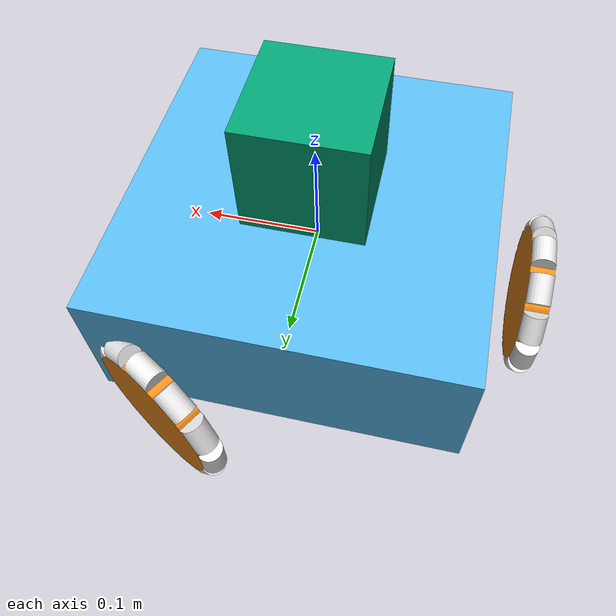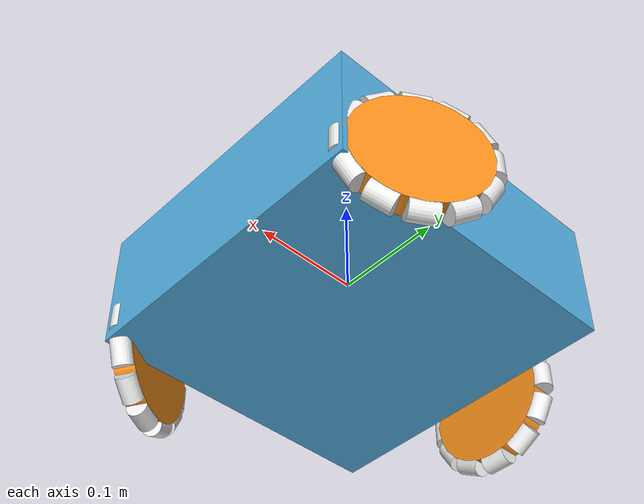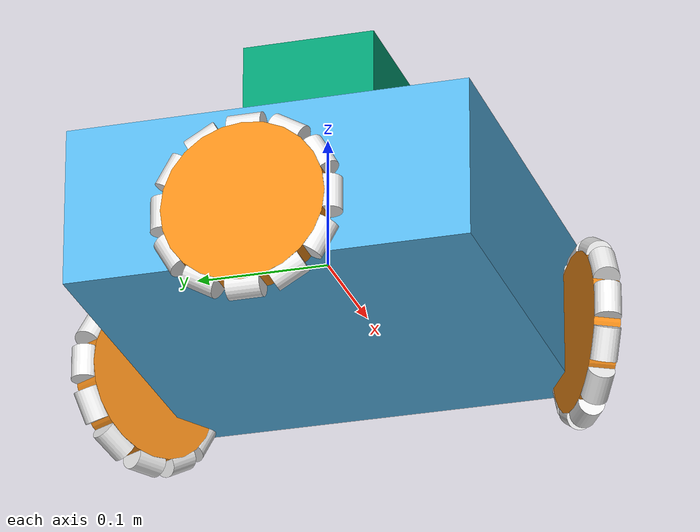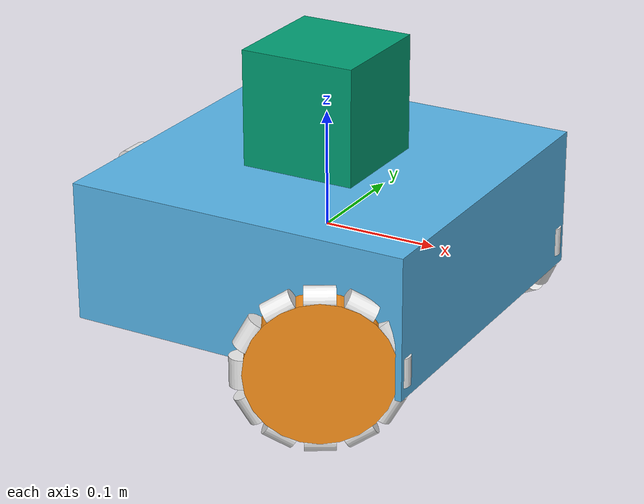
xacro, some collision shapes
<?xml version="1.0"?>
<robot name="omni_robot" xmlns:xacro="http://www.ros.org/wiki/xacro">

    <!-- Define a number of dimensions using properties -->
    <xacro:property name="base_size_x" value="0.30" />
    <xacro:property name="base_size_y" value="0.30" />
    <xacro:property name="base_size_z" value="0.12" />
    <xacro:property name="wheel_length" value="0.02" />
    <xacro:property name="wheel_radius" value="0.06" />
    <xacro:property name="roller_length" value="0.025" />
    <xacro:property name="roller_radius" value="0.01" />
    <xacro:property name="wheel_offset_x" value="0.09" />
    <xacro:property name="wheel_offset_y" value="0.17" />
    <xacro:property name="wheel_offset_z" value="-0.038" />

    <property name="PI" value="3.1415" />
    <xacro:include filename="$(find fira6_description)/urdf/materials.urdf.xacro" />

    <link name="base_footprint"/>

    <joint name="base_joint" type="fixed">
        <origin xyz="0 0 ${base_size_z/2}" rpy="0 0 0" />
        <child link="base_footprint"/>
        <parent link="base_link" />
    </joint>

    <link name="base_link">
        <visual>
            <origin xyz="0 0 0" rpy="0 0 1.57" />
            <geometry>
                <box size="${base_size_x} ${base_size_y} ${base_size_z}" />
		<!--mesh filename="package://fira6_description/meshes/fira6.STL" scale="0.001 0.001 0.001"/-->
            </geometry>
        </visual>
        <collision>
            <origin xyz="0 0 0" rpy="0 0 0" />
            <geometry>
                <box size="${base_size_x} ${base_size_y} ${base_size_z}" />
            </geometry>
        </collision>
    	<inertial>
            <mass value="50" />
      	    <origin xyz="0 0 0" />
      	    <inertia ixx="0.435" ixy="0.0"  ixz="0.0"
        	     iyy="0.435" iyz="0.0"
        	     izz="0.75" />
    	</inertial>
    </link>

  <joint name="hokuyo_joint" type="fixed">
    <axis xyz="0 0 0" />
    <origin xyz="0 0 ${base_size_z/2+0.05}" rpy="0 0 0"/>
    <parent link="base_link"/>
    <child link="hokuyo_link"/>
  </joint>

  <!-- Hokuyo Laser -->
  <link name="hokuyo_link">
    <collision>
      <origin xyz="0 0 0" rpy="0 0 0"/>
      <geometry>
	<box size="0.1 0.1 0.1"/>
      </geometry>
    </collision>

    <visual>
      <origin xyz="0 0 0" rpy="0 0 0"/>
      <geometry>
        <mesh filename="package://rrbot_description/meshes/hokuyo.dae"/>
      </geometry>
    </visual>

    <inertial>
      <mass value="1e-5" />
      <origin xyz="0 0 0" rpy="0 0 0"/>
      <inertia ixx="1e-6" ixy="0" ixz="0" iyy="1e-6" iyz="0" izz="1e-6" />
    </inertial>
  </link>

  <!-- hokuyo -->
  <gazebo reference="hokuyo_link">
    <sensor type="ray" name="head_hokuyo_sensor">
      <pose>0 0 0 0 0 0</pose>
      <visualize>false</visualize>
      <update_rate>40</update_rate>
      <ray>
        <scan>
          <horizontal>
            <samples>720</samples>
            <resolution>1</resolution>
            <min_angle>-1.570796</min_angle>
            <max_angle>1.570796</max_angle>
          </horizontal>
        </scan>
        <range>
          <min>0.10</min>
          <max>30.0</max>
          <resolution>0.01</resolution>
        </range>
        <noise>
          <type>gaussian</type>
          <mean>0.0</mean>
          <stddev>0.01</stddev>
        </noise>
      </ray>
      <plugin name="gazebo_ros_head_hokuyo_controller" filename="libgazebo_ros_laser.so">
        <topicName>/scan</topicName>
        <frameName>hokuyo_link</frameName>
      </plugin>
    </sensor>
  </gazebo>

    <macro name="omni_wheel" params="suffix parent reflect">
        <joint name="${parent}_${suffix}_wheel_joint" type="continuous">
            <axis xyz="0 0 1" />
            <limit effort="100" velocity="100"/>
            <safety_controller k_velocity="10" />
            <origin xyz="${wheel_offset_x} ${reflect*wheel_offset_y} ${wheel_offset_z}" rpy="${reflect*PI/2} 0 ${-0.5233*reflect}" />
            <parent link="${parent}_link"/>
            <child link="omni_${suffix}_wheel_link"/>
        </joint>
        <link name="omni_${suffix}_wheel_link">
            <visual>
                <origin xyz="0 0 0" rpy="0 0 0" />
                <geometry>
                    <cylinder radius="${wheel_radius}" length="${wheel_length}"/>
                </geometry>
                <material name="Orange" />
            </visual>
            <collision>
                <origin xyz="0 0 0" rpy="0 0 0" />
                <geometry>
                    <cylinder radius="${wheel_radius}" length="${wheel_length}"/>
                </geometry>
                <material name="Orange" />
            </collision>
    	    <inertial>
                <mass value="5" />
          	    <origin xyz="0 0 0" />
          	    <inertia ixx="0.0047" ixy="0.0"  ixz="0.0"
            		                iyy="0.0047" iyz="0.0"
	        				     izz="0.0015" />
    	    </inertial>
        </link>

        <joint name = "${suffix}_wheel_roller_joint1" type="continuous">
            <axis xyz="0 1 0" />
            <limit effort="100" velocity="100"/>
            <origin xyz="${wheel_radius} 0 0" rpy="0 0 0" />
            <parent link="omni_${suffix}_wheel_link"/>
            <child link="${suffix}_roller_link1"/>
        </joint>

        <link name="${suffix}_roller_link1">
            <visual>
                <origin xyz="0 0 0" rpy="1.57 0 0" />
                <geometry>
                    <cylinder radius="${roller_radius}" length="${roller_length}"/>
                </geometry>
                <material name="OffWhite" />
            </visual>
            <collision>
                <origin xyz="0 0 0" rpy="1.57 0 0" />
                <geometry>
                    <cylinder radius="${roller_radius}" length="${roller_length}"/>
                </geometry>
                <material name="OffWhite" />
            </collision>
    	    <inertial>
                <mass value="0.1" />
          	    <origin xyz="0 0 0" />
          	    <inertia ixx="0.00001" ixy="0.0"  ixz="0.0"
            				iyy="0.00001" iyz="0.0"
					              izz="0.000005" />
    	    </inertial>
        </link>

        <joint name = "${suffix}_wheel_roller_joint2" type="continuous">
            <axis xyz="0 1 0" />
            <limit effort="100" velocity="100"/>
            <origin xyz="${wheel_radius*0.866} ${wheel_radius*0.5} 0" rpy="0 0 0.5233" />
            <parent link="omni_${suffix}_wheel_link"/>
            <child link="${suffix}_roller_link2"/>
        </joint>

        <link name="${suffix}_roller_link2">
            <visual>
                <origin xyz="0 0 0" rpy="1.57 0 0" />
                <geometry>
                    <cylinder radius="${roller_radius}" length="${roller_length}"/>
                </geometry>
                <material name="OffWhite" />
            </visual>
            <collision>
                <origin xyz="0 0 0" rpy="1.57 0 0" />
                <geometry>
                    <cylinder radius="${roller_radius}" length="${roller_length}"/>
                </geometry>
                <material name="OffWhite" />
            </collision>
    	    <inertial>
                <mass value="0.1" />
          	    <origin xyz="0 0 0" />
          	    <inertia ixx="0.00001" ixy="0.0"  ixz="0.0"
            				iyy="0.00001" iyz="0.0"
					              izz="0.000005" />
    	    </inertial>
        </link>
        <joint name = "${suffix}_wheel_roller_joint3" type="continuous">
            <axis xyz="0 1 0" />
            <limit effort="100" velocity="100"/>
            <origin xyz="${wheel_radius*0.5} ${wheel_radius*0.866} 0" rpy="0 0 1.0467" />
            <parent link="omni_${suffix}_wheel_link"/>
            <child link="${suffix}_roller_link3"/>
        </joint>

        <link name="${suffix}_roller_link3">
            <visual>
                <origin xyz="0 0 0" rpy="1.57 0 0" />
                <geometry>
                    <cylinder radius="${roller_radius}" length="${roller_length}"/>
                </geometry>
                <material name="OffWhite" />
            </visual>
            <collision>
                <origin xyz="0 0 0" rpy="1.57 0 0" />
                <geometry>
                    <cylinder radius="${roller_radius}" length="${roller_length}"/>
                </geometry>
                <material name="OffWhite" />
            </collision>
    	    <inertial>
                <mass value="0.1" />
          	    <origin xyz="0 0 0" />
          	    <inertia ixx="0.00001" ixy="0.0"  ixz="0.0"
            				iyy="0.00001" iyz="0.0"
					              izz="0.000005" />
    	    </inertial>
        </link>
        <joint name = "${suffix}_wheel_roller_joint4" type="continuous">
            <axis xyz="0 1 0" />
            <limit effort="100" velocity="100"/>
            <origin xyz="0 ${wheel_radius*1} 0" rpy="0 0 1.57" />
            <parent link="omni_${suffix}_wheel_link"/>
            <child link="${suffix}_roller_link4"/>
        </joint>

        <link name="${suffix}_roller_link4">
            <visual>
                <origin xyz="0 0 0" rpy="1.57 0 0" />
                <geometry>
                    <cylinder radius="${roller_radius}" length="${roller_length}"/>
                </geometry>
                <material name="OffWhite" />
            </visual>
            <collision>
                <origin xyz="0 0 0" rpy="1.57 0 0" />
                <geometry>
                    <cylinder radius="${roller_radius}" length="${roller_length}"/>
                </geometry>
                <material name="OffWhite" />
            </collision>
    	    <inertial>
                <mass value="0.1" />
          	    <origin xyz="0 0 0" />
          	    <inertia ixx="0.00001" ixy="0.0"  ixz="0.0"
            				iyy="0.00001" iyz="0.0"
					              izz="0.000005" />
    	    </inertial>
        </link>
        <joint name = "${suffix}_wheel_roller_joint5" type="continuous">
            <axis xyz="0 1 0" />
            <limit effort="100" velocity="100"/>
            <origin xyz="${wheel_radius*-0.5} ${wheel_radius*0.866} 0" rpy="0 0 2.093" />
            <parent link="omni_${suffix}_wheel_link"/>
            <child link="${suffix}_roller_link5"/>
        </joint>

        <link name="${suffix}_roller_link5">
            <visual>
                <origin xyz="0 0 0" rpy="1.57 0 0" />
                <geometry>
                    <cylinder radius="${roller_radius}" length="${roller_length}"/>
                </geometry>
                <material name="OffWhite" />
            </visual>
            <collision>
                <origin xyz="0 0 0" rpy="1.57 0 0" />
                <geometry>
                    <cylinder radius="${roller_radius}" length="${roller_length}"/>
                </geometry>
                <material name="OffWhite" />
            </collision>
    	    <inertial>
                <mass value="0.1" />
          	    <origin xyz="0 0 0" />
          	    <inertia ixx="0.00001" ixy="0.0"  ixz="0.0"
            				iyy="0.00001" iyz="0.0"
					              izz="0.000005" />
    	    </inertial>
        </link>
        <joint name = "${suffix}_wheel_roller_joint6" type="continuous">
            <axis xyz="0 1 0" />
            <limit effort="100" velocity="100"/>
            <origin xyz="${wheel_radius*-0.866} ${wheel_radius*0.5} 0" rpy="0 0 2.617" />
            <parent link="omni_${suffix}_wheel_link"/>
            <child link="${suffix}_roller_link6"/>
        </joint>

        <link name="${suffix}_roller_link6">
            <visual>
                <origin xyz="0 0 0" rpy="1.57 0 0" />
                <geometry>
                    <cylinder radius="${roller_radius}" length="${roller_length}"/>
                </geometry>
                <material name="OffWhite" />
            </visual>
            <collision>
                <origin xyz="0 0 0" rpy="1.57 0 0" />
                <geometry>
                    <cylinder radius="${roller_radius}" length="${roller_length}"/>
                </geometry>
                <material name="OffWhite" />
            </collision>
    	    <inertial>
                <mass value="0.1" />
          	    <origin xyz="0 0 0" />
          	    <inertia ixx="0.00001" ixy="0.0"  ixz="0.0"
            				iyy="0.00001" iyz="0.0"
					              izz="0.000005" />
    	    </inertial>
        </link>
        <joint name = "${suffix}_wheel_roller_joint7" type="continuous">
            <axis xyz="0 1 0" />
            <limit effort="100" velocity="100"/>
            <origin xyz="${wheel_radius*-1} ${wheel_radius*0} 0" rpy="0 0 3.14" />
            <parent link="omni_${suffix}_wheel_link"/>
            <child link="${suffix}_roller_link7"/>
        </joint>

        <link name="${suffix}_roller_link7">
            <visual>
                <origin xyz="0 0 0" rpy="1.57 0 0" />
                <geometry>
                    <cylinder radius="${roller_radius}" length="${roller_length}"/>
                </geometry>
                <material name="OffWhite" />
            </visual>
            <collision>
                <origin xyz="0 0 0" rpy="1.57 0 0" />
                <geometry>
                    <cylinder radius="${roller_radius}" length="${roller_length}"/>
                </geometry>
                <material name="OffWhite" />
            </collision>
    	    <inertial>
                <mass value="0.1" />
          	    <origin xyz="0 0 0" />
          	    <inertia ixx="0.00001" ixy="0.0"  ixz="0.0"
            				iyy="0.00001" iyz="0.0"
					              izz="0.000005" />
    	    </inertial>
        </link>
        <joint name = "${suffix}_wheel_roller_joint8" type="continuous">
            <axis xyz="0 1 0" />
            <limit effort="100" velocity="100"/>
            <origin xyz="${wheel_radius*-0.866} ${wheel_radius*-0.5} 0" rpy="0 0 3.66" />
            <parent link="omni_${suffix}_wheel_link"/>
            <child link="${suffix}_roller_link8"/>
        </joint>

        <link name="${suffix}_roller_link8">
            <visual>
                <origin xyz="0 0 0" rpy="1.57 0 0" />
                <geometry>
                    <cylinder radius="${roller_radius}" length="${roller_length}"/>
                </geometry>
                <material name="OffWhite" />
            </visual>
            <collision>
                <origin xyz="0 0 0" rpy="1.57 0 0" />
                <geometry>
                    <cylinder radius="${roller_radius}" length="${roller_length}"/>
                </geometry>
                <material name="OffWhite" />
            </collision>
    	    <inertial>
                <mass value="0.1" />
          	    <origin xyz="0 0 0" />
          	    <inertia ixx="0.00001" ixy="0.0"  ixz="0.0"
            				iyy="0.00001" iyz="0.0"
					              izz="0.000005" />
    	    </inertial>
        </link>
	<joint name = "${suffix}_wheel_roller_joint9" type="continuous">
            <axis xyz="0 1 0" />
            <limit effort="100" velocity="100"/>
            <origin xyz="${wheel_radius*-0.5} ${wheel_radius*-0.866} 0" rpy="0 0 4.187" />
            <parent link="omni_${suffix}_wheel_link"/>
            <child link="${suffix}_roller_link9"/>
        </joint>

        <link name="${suffix}_roller_link9">
            <visual>
                <origin xyz="0 0 0" rpy="1.57 0 0" />
                <geometry>
                    <cylinder radius="${roller_radius}" length="${roller_length}"/>
                </geometry>
                <material name="OffWhite" />
            </visual>
            <collision>
                <origin xyz="0 0 0" rpy="1.57 0 0" />
                <geometry>
                    <cylinder radius="${roller_radius}" length="${roller_length}"/>
                </geometry>
                <material name="OffWhite" />
            </collision>
    	    <inertial>
                <mass value="0.1" />
          	    <origin xyz="0 0 0" />
          	    <inertia ixx="0.00001" ixy="0.0"  ixz="0.0"
            				iyy="0.00001" iyz="0.0"
					              izz="0.000005" />
    	    </inertial>
        </link>
	<joint name = "${suffix}_wheel_roller_joint10" type="continuous">
            <axis xyz="0 1 0" />
            <limit effort="100" velocity="100"/>
            <origin xyz="${wheel_radius*0} ${wheel_radius*-1} 0" rpy="0 0 4.71" />
            <parent link="omni_${suffix}_wheel_link"/>
            <child link="${suffix}_roller_link10"/>
        </joint>

        <link name="${suffix}_roller_link10">
            <visual>
                <origin xyz="0 0 0" rpy="1.57 0 0" />
                <geometry>
                    <cylinder radius="${roller_radius}" length="${roller_length}"/>
                </geometry>
                <material name="OffWhite" />
            </visual>
            <collision>
                <origin xyz="0 0 0" rpy="1.57 0 0" />
                <geometry>
                    <cylinder radius="${roller_radius}" length="${roller_length}"/>
                </geometry>
                <material name="OffWhite" />
            </collision>
    	    <inertial>
                <mass value="0.1" />
          	    <origin xyz="0 0 0" />
          	    <inertia ixx="0.00001" ixy="0.0"  ixz="0.0"
            				iyy="0.00001" iyz="0.0"
					              izz="0.000005" />
    	    </inertial>
        </link>
	<joint name = "${suffix}_wheel_roller_joint11" type="continuous">
            <axis xyz="0 1 0" />
            <limit effort="100" velocity="100"/>
            <origin xyz="${wheel_radius*0.5} ${wheel_radius*-0.866} 0" rpy="0 0 5.233" />
            <parent link="omni_${suffix}_wheel_link"/>
            <child link="${suffix}_roller_link11"/>
        </joint>

        <link name="${suffix}_roller_link11">
            <visual>
                <origin xyz="0 0 0" rpy="1.57 0 0" />
                <geometry>
                    <cylinder radius="${roller_radius}" length="${roller_length}"/>
                </geometry>
                <material name="OffWhite" />
            </visual>
            <collision>
                <origin xyz="0 0 0" rpy="1.57 0 0" />
                <geometry>
                    <cylinder radius="${roller_radius}" length="${roller_length}"/>
                </geometry>
                <material name="OffWhite" />
            </collision>
    	    <inertial>
                <mass value="0.1" />
          	    <origin xyz="0 0 0" />
          	    <inertia ixx="0.00001" ixy="0.0"  ixz="0.0"
            				iyy="0.00001" iyz="0.0"
					              izz="0.000005" />
    	    </inertial>
        </link>
	<joint name = "${suffix}_wheel_roller_joint12" type="continuous">
            <axis xyz="0 1 0" />
            <limit effort="100" velocity="100"/>
            <origin xyz="${wheel_radius*0.866} ${wheel_radius*-0.5} 0" rpy="0 0 5.757" />
            <parent link="omni_${suffix}_wheel_link"/>
            <child link="${suffix}_roller_link12"/>
        </joint>

        <link name="${suffix}_roller_link12">
            <visual>
                <origin xyz="0 0 0" rpy="1.57 0 0" />
                <geometry>
                    <cylinder radius="${roller_radius}" length="${roller_length}"/>
                </geometry>
                <material name="OffWhite" />
            </visual>
            <collision>
                <origin xyz="0 0 0" rpy="1.57 0 0" />
                <geometry>
                    <cylinder radius="${roller_radius}" length="${roller_length}"/>
                </geometry>
                <material name="OffWhite" />
            </collision>
    	    <inertial>
                <mass value="0.1" />
          	    <origin xyz="0 0 0" />
          	    <inertia ixx="0.00001" ixy="0.0"  ixz="0.0"
            				iyy="0.00001" iyz="0.0"
					              izz="0.000005" />
    	    </inertial>
        </link>
        <gazebo reference="$omni_${suffix}_wheel_link">
		<mu1 value="1.0"/>
		<mu2 value="1.0"/>
		<kp value="10000000.0" />
		<kd value="1.0" />
		<fdir1 value="1 0 0"/>
	</gazebo>
    </macro>

    <macro name="omni_wheel_back" params="suffix parent reflect">
        <joint name="${parent}_${suffix}_wheel_joint" type="continuous">
            <axis xyz="0 0 1" />
            <limit effort="100" velocity="100"/>
            <safety_controller k_velocity="10" />
            <origin xyz="-0.1924 0 ${wheel_offset_z}" rpy="${reflect*PI/2} 0 1.57" />
            <parent link="${parent}_link"/>
            <child link="omni_${suffix}_wheel_link"/>
        </joint>
        <link name="omni_${suffix}_wheel_link">
            <visual>
                <origin xyz="0 0 0" rpy="0 0 0" />
                <geometry>
                    <cylinder radius="${wheel_radius}" length="${wheel_length}"/>
                </geometry>
                <material name="Orange" />
            </visual>
            <collision>
                <origin xyz="0 0 0" rpy="0 0 0" />
                <geometry>
                    <cylinder radius="${wheel_radius}" length="${wheel_length}"/>
                </geometry>
                <material name="Orange" />
            </collision>
    	    <inertial>
                <mass value="5" />
          	    <origin xyz="0 0 0" />
          	    <inertia ixx="0.0047" ixy="0.0"  ixz="0.0"
            		                iyy="0.0047" iyz="0.0"
	        				     izz="0.0015" />
    	    </inertial>
        </link>

        <joint name = "${suffix}_wheel_roller_joint1" type="continuous">
            <axis xyz="0 1 0" />
            <limit effort="100" velocity="100"/>
            <origin xyz="${wheel_radius} 0 0" rpy="0 0 0" />
            <parent link="omni_${suffix}_wheel_link"/>
            <child link="${suffix}_roller_link1"/>
        </joint>

        <link name="${suffix}_roller_link1">
            <visual>
                <origin xyz="0 0 0" rpy="1.57 0 0" />
                <geometry>
                    <cylinder radius="${roller_radius}" length="${roller_length}"/>
                </geometry>
                <material name="OffWhite" />
            </visual>
            <collision>
                <origin xyz="0 0 0" rpy="1.57 0 0" />
                <geometry>
                    <cylinder radius="${roller_radius}" length="${roller_length}"/>
                </geometry>
                <material name="OffWhite" />
            </collision>
    	    <inertial>
                <mass value="0.1" />
          	    <origin xyz="0 0 0" />
          	    <inertia ixx="0.00001" ixy="0.0"  ixz="0.0"
            				iyy="0.00001" iyz="0.0"
					              izz="0.000005" />
    	    </inertial>
        </link>

        <joint name = "${suffix}_wheel_roller_joint2" type="continuous">
            <axis xyz="0 1 0" />
            <limit effort="100" velocity="100"/>
            <origin xyz="${wheel_radius*0.866} ${wheel_radius*0.5} 0" rpy="0 0 0.5233" />
            <parent link="omni_${suffix}_wheel_link"/>
            <child link="${suffix}_roller_link2"/>
        </joint>

        <link name="${suffix}_roller_link2">
            <visual>
                <origin xyz="0 0 0" rpy="1.57 0 0" />
                <geometry>
                    <cylinder radius="${roller_radius}" length="${roller_length}"/>
                </geometry>
                <material name="OffWhite" />
            </visual>
            <collision>
                <origin xyz="0 0 0" rpy="1.57 0 0" />
                <geometry>
                    <cylinder radius="${roller_radius}" length="${roller_length}"/>
                </geometry>
                <material name="OffWhite" />
            </collision>
    	    <inertial>
                <mass value="0.1" />
          	    <origin xyz="0 0 0" />
          	    <inertia ixx="0.00001" ixy="0.0"  ixz="0.0"
            				iyy="0.00001" iyz="0.0"
					              izz="0.000005" />
    	    </inertial>
        </link>
        <joint name = "${suffix}_wheel_roller_joint3" type="continuous">
            <axis xyz="0 1 0" />
            <limit effort="100" velocity="100"/>
            <origin xyz="${wheel_radius*0.5} ${wheel_radius*0.866} 0" rpy="0 0 1.0467" />
            <parent link="omni_${suffix}_wheel_link"/>
            <child link="${suffix}_roller_link3"/>
        </joint>

        <link name="${suffix}_roller_link3">
            <visual>
                <origin xyz="0 0 0" rpy="1.57 0 0" />
                <geometry>
                    <cylinder radius="${roller_radius}" length="${roller_length}"/>
                </geometry>
                <material name="OffWhite" />
            </visual>
            <collision>
                <origin xyz="0 0 0" rpy="1.57 0 0" />
                <geometry>
                    <cylinder radius="${roller_radius}" length="${roller_length}"/>
                </geometry>
                <material name="OffWhite" />
            </collision>
    	    <inertial>
                <mass value="0.1" />
          	    <origin xyz="0 0 0" />
          	    <inertia ixx="0.00001" ixy="0.0"  ixz="0.0"
            				iyy="0.00001" iyz="0.0"
					              izz="0.000005" />
    	    </inertial>
        </link>
        <joint name = "${suffix}_wheel_roller_joint4" type="continuous">
            <axis xyz="0 1 0" />
            <limit effort="100" velocity="100"/>
            <origin xyz="0 ${wheel_radius*1} 0" rpy="0 0 1.57" />
            <parent link="omni_${suffix}_wheel_link"/>
            <child link="${suffix}_roller_link4"/>
        </joint>

        <link name="${suffix}_roller_link4">
            <visual>
                <origin xyz="0 0 0" rpy="1.57 0 0" />
                <geometry>
                    <cylinder radius="${roller_radius}" length="${roller_length}"/>
                </geometry>
                <material name="OffWhite" />
            </visual>
            <collision>
                <origin xyz="0 0 0" rpy="1.57 0 0" />
                <geometry>
                    <cylinder radius="${roller_radius}" length="${roller_length}"/>
                </geometry>
                <material name="OffWhite" />
            </collision>
    	    <inertial>
                <mass value="0.1" />
          	    <origin xyz="0 0 0" />
          	    <inertia ixx="0.00001" ixy="0.0"  ixz="0.0"
            				iyy="0.00001" iyz="0.0"
					              izz="0.000005" />
    	    </inertial>
        </link>
        <joint name = "${suffix}_wheel_roller_joint5" type="continuous">
            <axis xyz="0 1 0" />
            <limit effort="100" velocity="100"/>
            <origin xyz="${wheel_radius*-0.5} ${wheel_radius*0.866} 0" rpy="0 0 2.093" />
            <parent link="omni_${suffix}_wheel_link"/>
            <child link="${suffix}_roller_link5"/>
        </joint>

        <link name="${suffix}_roller_link5">
            <visual>
                <origin xyz="0 0 0" rpy="1.57 0 0" />
                <geometry>
                    <cylinder radius="${roller_radius}" length="${roller_length}"/>
                </geometry>
                <material name="OffWhite" />
            </visual>
            <collision>
                <origin xyz="0 0 0" rpy="1.57 0 0" />
                <geometry>
                    <cylinder radius="${roller_radius}" length="${roller_length}"/>
                </geometry>
                <material name="OffWhite" />
            </collision>
    	    <inertial>
                <mass value="0.1" />
          	    <origin xyz="0 0 0" />
          	    <inertia ixx="0.00001" ixy="0.0"  ixz="0.0"
            				iyy="0.00001" iyz="0.0"
					              izz="0.000005" />
    	    </inertial>
        </link>
        <joint name = "${suffix}_wheel_roller_joint6" type="continuous">
            <axis xyz="0 1 0" />
            <limit effort="100" velocity="100"/>
            <origin xyz="${wheel_radius*-0.866} ${wheel_radius*0.5} 0" rpy="0 0 2.617" />
            <parent link="omni_${suffix}_wheel_link"/>
            <child link="${suffix}_roller_link6"/>
        </joint>

        <link name="${suffix}_roller_link6">
            <visual>
                <origin xyz="0 0 0" rpy="1.57 0 0" />
                <geometry>
                    <cylinder radius="${roller_radius}" length="${roller_length}"/>
                </geometry>
                <material name="OffWhite" />
            </visual>
            <collision>
                <origin xyz="0 0 0" rpy="1.57 0 0" />
                <geometry>
                    <cylinder radius="${roller_radius}" length="${roller_length}"/>
                </geometry>
                <material name="OffWhite" />
            </collision>
    	    <inertial>
                <mass value="0.1" />
          	    <origin xyz="0 0 0" />
          	    <inertia ixx="0.00001" ixy="0.0"  ixz="0.0"
            				iyy="0.00001" iyz="0.0"
					              izz="0.000005" />
    	    </inertial>
        </link>

        <joint name = "${suffix}_wheel_roller_joint7" type="continuous">
            <axis xyz="0 1 0" />
            <limit effort="100" velocity="100"/>
            <origin xyz="${wheel_radius*-1} ${wheel_radius*0} 0" rpy="0 0 3.14" />
            <parent link="omni_${suffix}_wheel_link"/>
            <child link="${suffix}_roller_link7"/>
        </joint>

        <link name="${suffix}_roller_link7">
            <visual>
                <origin xyz="0 0 0" rpy="1.57 0 0" />
                <geometry>
                    <cylinder radius="${roller_radius}" length="${roller_length}"/>
                </geometry>
                <material name="OffWhite" />
            </visual>
            <collision>
                <origin xyz="0 0 0" rpy="1.57 0 0" />
                <geometry>
                    <cylinder radius="${roller_radius}" length="${roller_length}"/>
                </geometry>
                <material name="OffWhite" />
            </collision>
    	    <inertial>
                <mass value="0.1" />
          	    <origin xyz="0 0 0" />
          	    <inertia ixx="0.00001" ixy="0.0"  ixz="0.0"
            				iyy="0.00001" iyz="0.0"
					              izz="0.000005" />
    	    </inertial>
        </link>
        <joint name = "${suffix}_wheel_roller_joint8" type="continuous">
            <axis xyz="0 1 0" />
            <limit effort="100" velocity="100"/>
            <origin xyz="${wheel_radius*-0.866} ${wheel_radius*-0.5} 0" rpy="0 0 3.66" />
            <parent link="omni_${suffix}_wheel_link"/>
            <child link="${suffix}_roller_link8"/>
        </joint>

        <link name="${suffix}_roller_link8">
            <visual>
                <origin xyz="0 0 0" rpy="1.57 0 0" />
                <geometry>
                    <cylinder radius="${roller_radius}" length="${roller_length}"/>
                </geometry>
                <material name="OffWhite" />
            </visual>
            <collision>
                <origin xyz="0 0 0" rpy="1.57 0 0" />
                <geometry>
                    <cylinder radius="${roller_radius}" length="${roller_length}"/>
                </geometry>
                <material name="OffWhite" />
            </collision>
    	    <inertial>
                <mass value="0.1" />
          	    <origin xyz="0 0 0" />
          	    <inertia ixx="0.00001" ixy="0.0"  ixz="0.0"
            				iyy="0.00001" iyz="0.0"
					              izz="0.000005" />
    	    </inertial>
        </link>
	<joint name = "${suffix}_wheel_roller_joint9" type="continuous">
            <axis xyz="0 1 0" />
            <limit effort="100" velocity="100"/>
            <origin xyz="${wheel_radius*-0.5} ${wheel_radius*-0.866} 0" rpy="0 0 4.187" />
            <parent link="omni_${suffix}_wheel_link"/>
            <child link="${suffix}_roller_link9"/>
        </joint>

        <link name="${suffix}_roller_link9">
            <visual>
                <origin xyz="0 0 0" rpy="1.57 0 0" />
                <geometry>
                    <cylinder radius="${roller_radius}" length="${roller_length}"/>
                </geometry>
                <material name="OffWhite" />
            </visual>
            <collision>
                <origin xyz="0 0 0" rpy="1.57 0 0" />
                <geometry>
                    <cylinder radius="${roller_radius}" length="${roller_length}"/>
                </geometry>
                <material name="OffWhite" />
            </collision>
    	    <inertial>
                <mass value="0.1" />
          	    <origin xyz="0 0 0" />
          	    <inertia ixx="0.00001" ixy="0.0"  ixz="0.0"
            				iyy="0.00001" iyz="0.0"
					              izz="0.000005" />
    	    </inertial>
        </link>
	<joint name = "${suffix}_wheel_roller_joint10" type="continuous">
            <axis xyz="0 1 0" />
            <limit effort="100" velocity="100"/>
            <origin xyz="${wheel_radius*0} ${wheel_radius*-1} 0" rpy="0 0 4.71" />
            <parent link="omni_${suffix}_wheel_link"/>
            <child link="${suffix}_roller_link10"/>
        </joint>

        <link name="${suffix}_roller_link10">
            <visual>
                <origin xyz="0 0 0" rpy="1.57 0 0" />
                <geometry>
                    <cylinder radius="${roller_radius}" length="${roller_length}"/>
                </geometry>
                <material name="OffWhite" />
            </visual>
            <collision>
                <origin xyz="0 0 0" rpy="1.57 0 0" />
                <geometry>
                    <cylinder radius="${roller_radius}" length="${roller_length}"/>
                </geometry>
                <material name="OffWhite" />
            </collision>
    	    <inertial>
                <mass value="0.1" />
          	    <origin xyz="0 0 0" />
          	    <inertia ixx="0.00001" ixy="0.0"  ixz="0.0"
            				iyy="0.00001" iyz="0.0"
					              izz="0.000005" />
    	    </inertial>
        </link>
	<joint name = "${suffix}_wheel_roller_joint11" type="continuous">
            <axis xyz="0 1 0" />
            <limit effort="100" velocity="100"/>
            <origin xyz="${wheel_radius*0.5} ${wheel_radius*-0.866} 0" rpy="0 0 5.233" />
            <parent link="omni_${suffix}_wheel_link"/>
            <child link="${suffix}_roller_link11"/>
        </joint>

        <link name="${suffix}_roller_link11">
            <visual>
                <origin xyz="0 0 0" rpy="1.57 0 0" />
                <geometry>
                    <cylinder radius="${roller_radius}" length="${roller_length}"/>
                </geometry>
                <material name="OffWhite" />
            </visual>
            <collision>
                <origin xyz="0 0 0" rpy="1.57 0 0" />
                <geometry>
                    <cylinder radius="${roller_radius}" length="${roller_length}"/>
                </geometry>
                <material name="OffWhite" />
            </collision>
    	    <inertial>
                <mass value="0.1" />
          	    <origin xyz="0 0 0" />
          	    <inertia ixx="0.00001" ixy="0.0"  ixz="0.0"
            				iyy="0.00001" iyz="0.0"
					              izz="0.000005" />
    	    </inertial>
        </link>
	<joint name = "${suffix}_wheel_roller_joint12" type="continuous">
            <axis xyz="0 1 0" />
            <limit effort="100" velocity="100"/>
            <origin xyz="${wheel_radius*0.866} ${wheel_radius*-0.5} 0" rpy="0 0 5.757" />
            <parent link="omni_${suffix}_wheel_link"/>
            <child link="${suffix}_roller_link12"/>
        </joint>

        <link name="${suffix}_roller_link12">
            <visual>
                <origin xyz="0 0 0" rpy="1.57 0 0" />
                <geometry>
                    <cylinder radius="${roller_radius}" length="${roller_length}"/>
                </geometry>
                <material name="OffWhite" />
            </visual>
            <collision>
                <origin xyz="0 0 0" rpy="1.57 0 0" />
                <geometry>
                    <cylinder radius="${roller_radius}" length="${roller_length}"/>
                </geometry>
                <material name="OffWhite" />
            </collision>
    	    <inertial>
                <mass value="0.1" />
          	    <origin xyz="0 0 0" />
          	    <inertia ixx="0.00001" ixy="0.0"  ixz="0.0"
            				iyy="0.00001" iyz="0.0"
					              izz="0.000005" />
    	    </inertial>
        </link>
	<gazebo reference="$omni_${suffix}_wheel_link">
		<mu1 value="1.0"/>
		<mu2 value="1.0"/>
		<kp value="10000000.0" />
		<kd value="1.0" />
		<fdir1 value="1 0 0"/>
	</gazebo>
    </macro>

    <omni_wheel parent="base" suffix="l" reflect="1"/>
    <omni_wheel parent="base" suffix="r" reflect="-1"/>
    <omni_wheel_back parent="base" suffix="b" reflect="1"/>

  <!-- ###################################################Transmission################################################### -->
  <transmission name="tran1">
    <type>transmission_interface/SimpleTransmission</type>
    <joint name="base_l_wheel_joint">
      <hardwareInterface>VelocityJointInterface</hardwareInterface>
    </joint>
    <actuator name="motor1">
      <mechanicalReduction>1</mechanicalReduction>
    </actuator>
  </transmission>

  <transmission name="tran2">
    <type>transmission_interface/SimpleTransmission</type>
    <joint name="base_r_wheel_joint">
      <hardwareInterface>VelocityJointInterface</hardwareInterface>
    </joint>
    <actuator name="motor2">
      <mechanicalReduction>1</mechanicalReduction>
    </actuator>
  </transmission>

  <transmission name="tran3">
    <type>transmission_interface/SimpleTransmission</type>
    <joint name="base_b_wheel_joint">
      <hardwareInterface>VelocityJointInterface</hardwareInterface>
    </joint>
    <actuator name="motor3">
      <mechanicalReduction>1</mechanicalReduction>
    </actuator>
  </transmission>
  <gazebo>
      <plugin name="3d_drive_controller" filename="lib3w_motion.so"/>
  </gazebo>
</robot>
